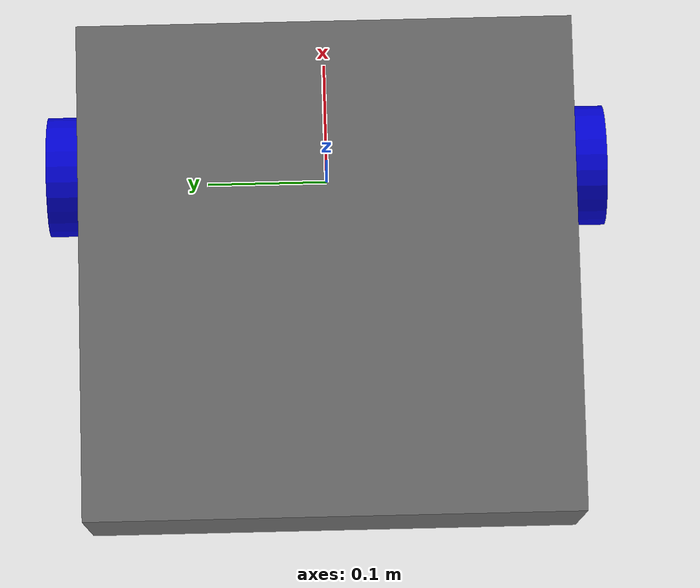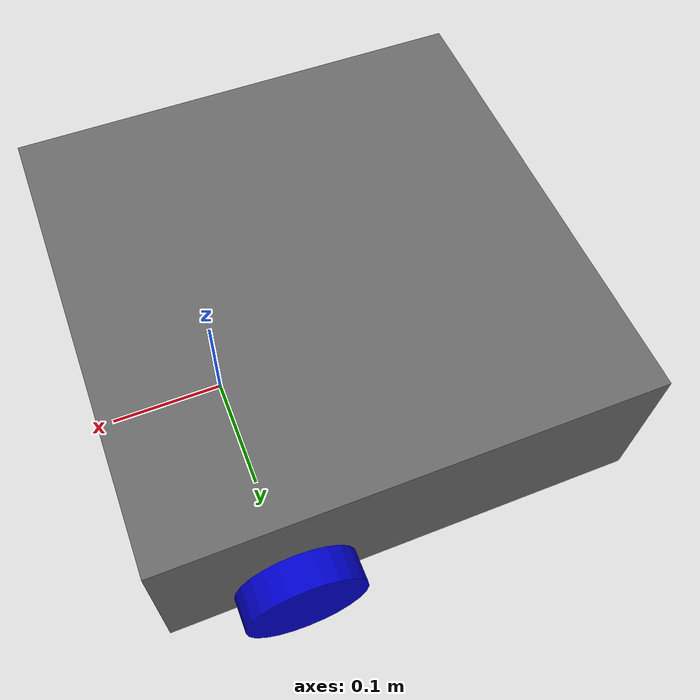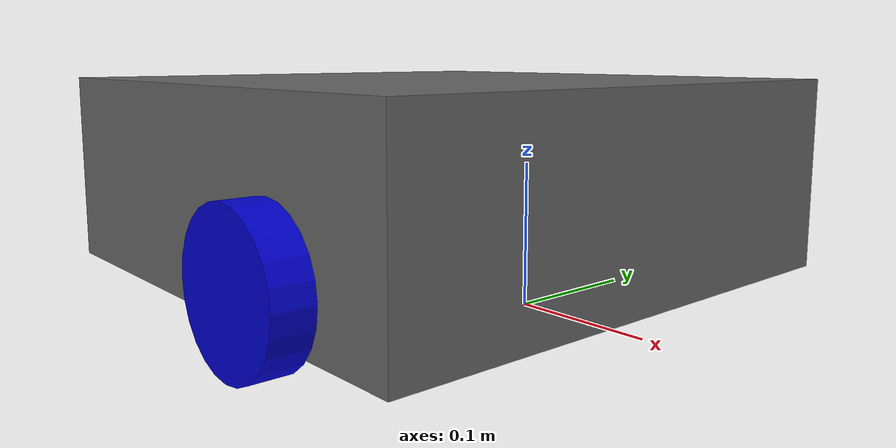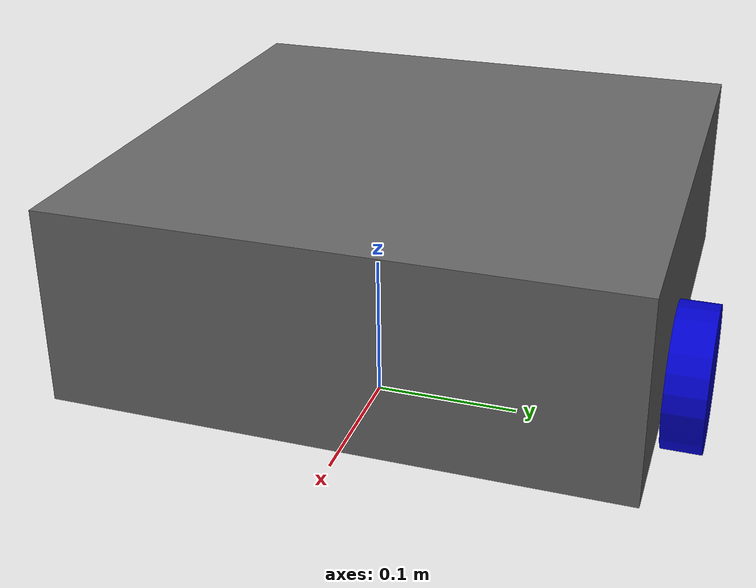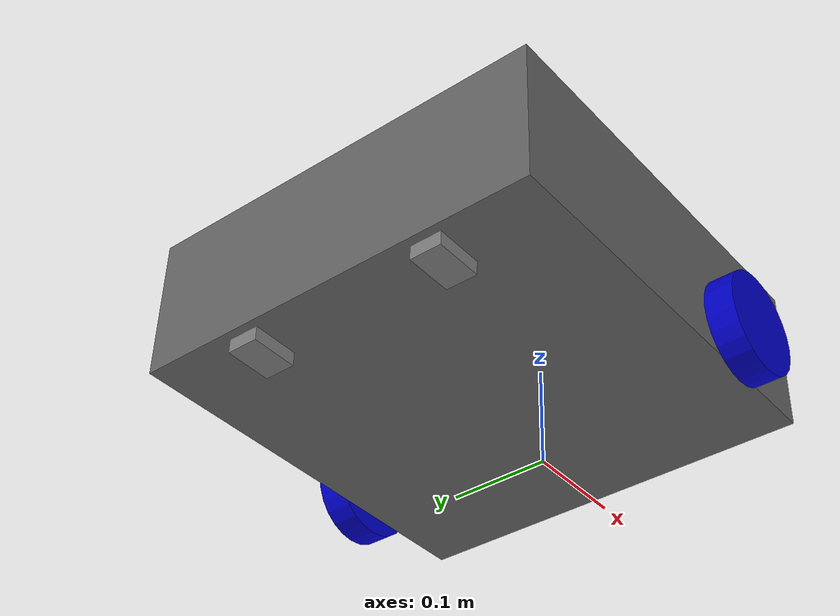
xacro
<?xml version="1.0" ?>
<robot name="esn_robot" xmlns:xacro="http://www.ros.org/wiki/xacro">

  <xacro:arg name="prefix" default=""/>
  <xacro:arg name="use_fake_hardware" default="true"/>

  <xacro:include filename="$(find esn_description)/urdf/esn_robot_base.xacro"/>

  <xacro:property name="scanner_xyz" value="0.1 0.0 0.11"/> <!-- front-top, quasi a filo -->
  <xacro:property name="scanner_rpy" value="0 0 0"/>
  <xacro:property name="prefix" value="$(arg prefix)"/>
  <xacro:property name="use_fake_hardware" value="$(arg use_fake_hardware)"/>

  <xacro:esn_robot prefix="${prefix}"/>

  <!-- ====== nanoScan3 via macro SICK ====== -->
  <!-- Include del macro ufficiale -->

  <link name="${prefix}laser_mount_link"/>

  <!-- Fisso alla base_link -->
  <joint name="${prefix}laser_mount_joint" type="fixed">
    <parent link="${prefix}base_link"/>
    <child link="${prefix}laser_mount_link"/>
    <origin xyz="${scanner_xyz}" rpy="${scanner_rpy}"/>
  </joint>

  <!-- Istanzia lo scanner e fissalo alla base.
       Puoi cambiare mounting_kit / ros_topic / range/angoli come vuoi. -->

  <!-- Tag ros2 control -->
  <xacro:include filename="$(find esn_description)/urdf/esn_ros2_control.xacro"/>
  <xacro:esn_ros2_control use_fake_hardware="${use_fake_hardware}" name="esn_robot" prefix="${prefix}"/>

</robot>

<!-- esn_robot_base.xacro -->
<robot name="esn_robot_macros" xmlns:xacro="http://www.ros.org/wiki/xacro">

  <!-- ====== Materiali (definiti una sola volta, fuori dalla macro) ====== -->
  <material name="black"><color rgba="0.0 0.0 0.0 1.0"/></material>
  <material name="dark"><color rgba="0.3 0.3 0.3 1.0"/></material>
  <material name="light_black"><color rgba="0.4 0.4 0.4 1.0"/></material>
  <material name="blue"><color rgba="0.0 0.0 0.8 1.0"/></material>
  <material name="green"><color rgba="0.0 0.8 0.0 1.0"/></material>
  <material name="grey"><color rgba="0.5 0.5 0.5 1.0"/></material>
  <material name="orange"><color rgba="1.0 0.4235 0.0392 1.0"/></material>
  <material name="brown"><color rgba="0.8706 0.8118 0.7647 1.0"/></material>
  <material name="red"><color rgba="0.8 0.0 0.0 1.0"/></material>
  <material name="white"><color rgba="1.0 1.0 1.0 1.0"/></material>

  <!--
    Macro principale:
      - prefix: per evitare collisioni (es. "r1_")
      - scanner_xyz / scanner_rpy: posa del supporto laser (solo il supporto, NIENTE scanner)
  -->
  <xacro:macro name="esn_robot" params="prefix:=''">

    <!-- ====== base_footprint / base_link + ruote + caster + IMU (come nel tuo URDF) ====== -->
    <link name="${prefix}base_footprint"/>

    <joint name="${prefix}base_joint" type="fixed">
      <parent link="${prefix}base_footprint"/>
      <child  link="${prefix}base_link"/>
      <origin xyz="0 0 0.015" rpy="0 0 0"/>
    </joint>

    <link name="${prefix}base_link">
      <!-- Visual / Collision: box (niente mesh), scala 1.5× -->
      <visual>
        <origin xyz="-0.096 0 0.0705" rpy="0 0 0"/>
        <geometry><box size="0.399 0.399 0.141"/></geometry>
        <material name="light_black"/>
      </visual>
      <collision>
        <origin xyz="-0.096 0 0.0705" rpy="0 0 0"/>
        <geometry><box size="0.399 0.399 0.141"/></geometry>
      </collision>

      <inertial>
        <origin xyz="0 0 0" rpy="0 0 0"/>
        <mass value="4.633569900"/>
        <inertia ixx="0.066067688981" ixy="-0.000361284677" ixz="0.000847500393"
                 iyy="0.065454645544" iyz="-0.000026898808"
                 izz="0.110965395656" />
      </inertial>
    </link>

    <!-- Ruota sinistra -->
    <joint name="${prefix}wheel_left_joint" type="continuous">
      <parent link="${prefix}base_link"/>
      <child  link="${prefix}wheel_left_link"/>
      <origin xyz="0.0 0.216 0.0345" rpy="-1.57 0 0"/>
      <axis xyz="0 0 1"/>
    </joint>

    <link name="${prefix}wheel_left_link">
      <visual>
        <origin xyz="0 0 0" rpy="0 0 0"/>
        <geometry><cylinder length="0.027" radius="0.0495"/></geometry>
        <material name="blue"/>
      </visual>
      <collision>
        <origin xyz="0 0 0" rpy="0 0 0"/>
        <geometry><cylinder length="0.027" radius="0.0495"/></geometry>
      </collision>
      <inertial>
        <origin xyz="0 0 0" />
        <mass value="0.096183923" />
        <inertia ixx="8.486456062500e-05" ixy="-3.217455396563e-10" ixz="-4.509299286562e-08"
                 iyy="8.499238621875e-05" iyz="-1.093508125313e-10"
                 izz="1.572859873125e-04" />
      </inertial>
    </link>

    <!-- Ruota destra -->
    <joint name="${prefix}wheel_right_joint" type="continuous">
      <parent link="${prefix}base_link"/>
      <child  link="${prefix}wheel_right_link"/>
      <origin xyz="0.0 -0.216 0.0345" rpy="-1.57 0 0"/>
      <axis xyz="0 0 1"/>
    </joint>

    <link name="${prefix}wheel_right_link">
      <visual>
        <origin xyz="0 0 0" rpy="0 0 0"/>
        <geometry><cylinder length="0.027" radius="0.0495"/></geometry>
        <material name="blue"/>
      </visual>
      <collision>
        <origin xyz="0 0 0" rpy="0 0 0"/>
        <geometry><cylinder length="0.027" radius="0.0495"/></geometry>
      </collision>
      <inertial>
        <origin xyz="0 0 0" />
        <mass value="0.096183923" />
        <inertia ixx="8.486456062500e-05" ixy="-3.217455396563e-10" ixz="-4.509299286562e-08"
                 iyy="8.499238621875e-05" iyz="-1.093508125313e-10"
                 izz="1.572859873125e-04" />
      </inertial>
    </link>

    <!-- Caster posteriore destro -->
    <joint name="${prefix}caster_back_right_joint" type="fixed">
      <parent link="${prefix}base_link"/>
      <child  link="${prefix}caster_back_right_link"/>
      <origin xyz="-0.2655 -0.096 -0.006" rpy="-1.57 0 0"/>
    </joint>

    <link name="${prefix}caster_back_right_link">
      <visual>
        <origin xyz="0 0.0015 0" rpy="0 0 0"/>
        <geometry><box size="0.045 0.0135 0.03"/></geometry>
        <material name="grey"/>
      </visual>
      <collision>
        <origin xyz="0 0.0015 0" rpy="0 0 0"/>
        <geometry><box size="0.045 0.0135 0.03"/></geometry>
      </collision>
      <inertial>
        <origin xyz="0 0 0" />
        <mass value="0.016875000" />
        <inertia ixx="0.00759375" ixy="0.0" ixz="0.0"
                 iyy="0.00759375" iyz="0.0"
                 izz="0.00759375" />
      </inertial>
    </link>

    <!-- Caster posteriore sinistro -->
    <joint name="${prefix}caster_back_left_joint" type="fixed">
      <parent link="${prefix}base_link"/>
      <child  link="${prefix}caster_back_left_link"/>
      <origin xyz="-0.2655 0.096 -0.006" rpy="-1.57 0 0"/>
    </joint>

    <link name="${prefix}caster_back_left_link">
      <visual>
        <origin xyz="0 0.0015 0" rpy="0 0 0"/>
        <geometry><box size="0.045 0.0135 0.03"/></geometry>
        <material name="grey"/>
      </visual>
      <collision>
        <origin xyz="0 0.0015 0" rpy="0 0 0"/>
        <geometry><box size="0.045 0.0135 0.03"/></geometry>
      </collision>
      <inertial>
        <origin xyz="0 0 0" />
        <mass value="0.016875000" />
        <inertia ixx="0.00759375" ixy="0.0" ixz="0.0"
                 iyy="0.00759375" iyz="0.0"
                 izz="0.00759375" />
      </inertial>
    </link>
  </xacro:macro>

</robot>
